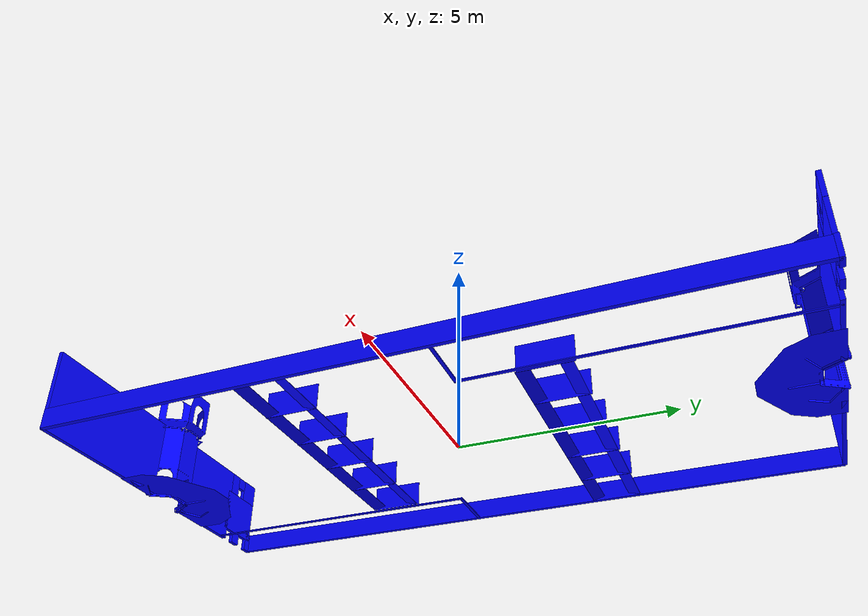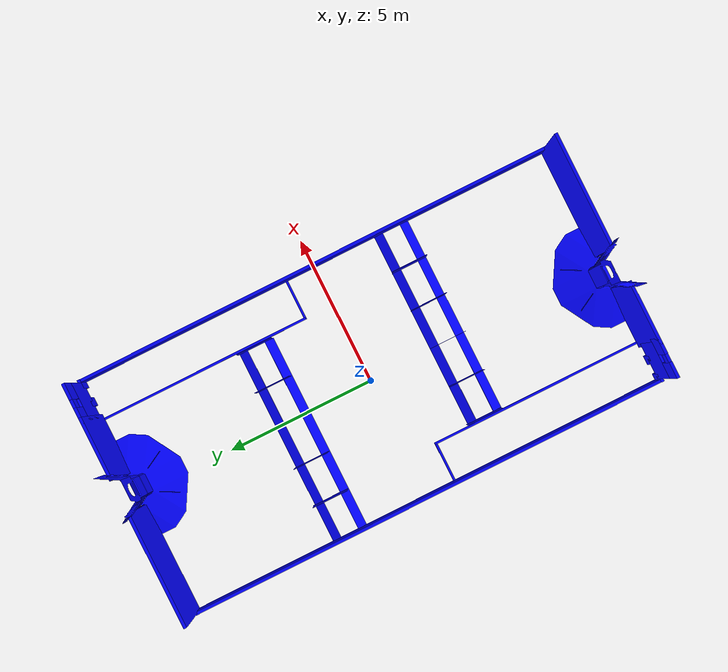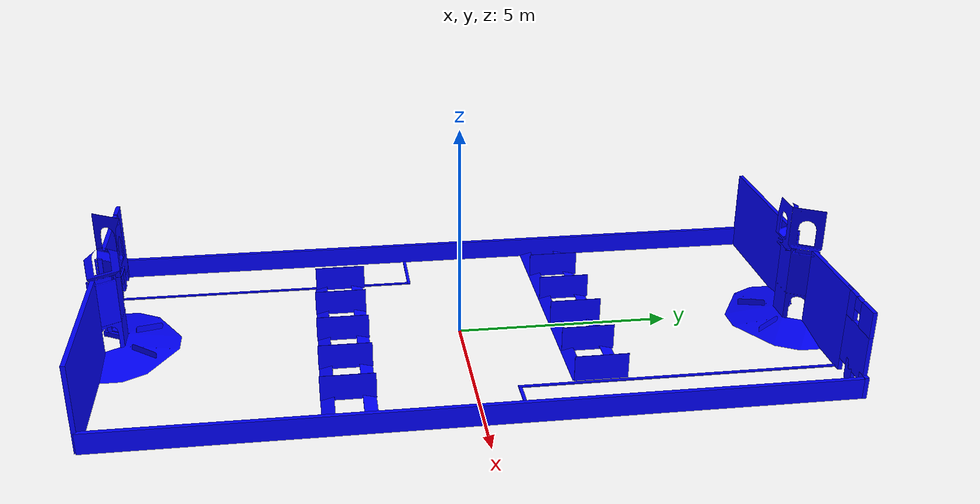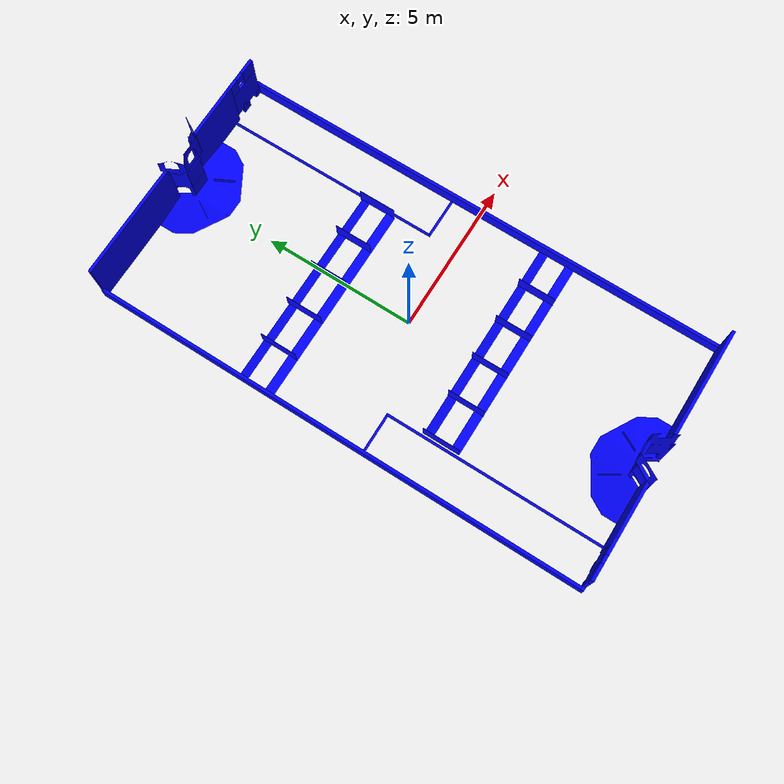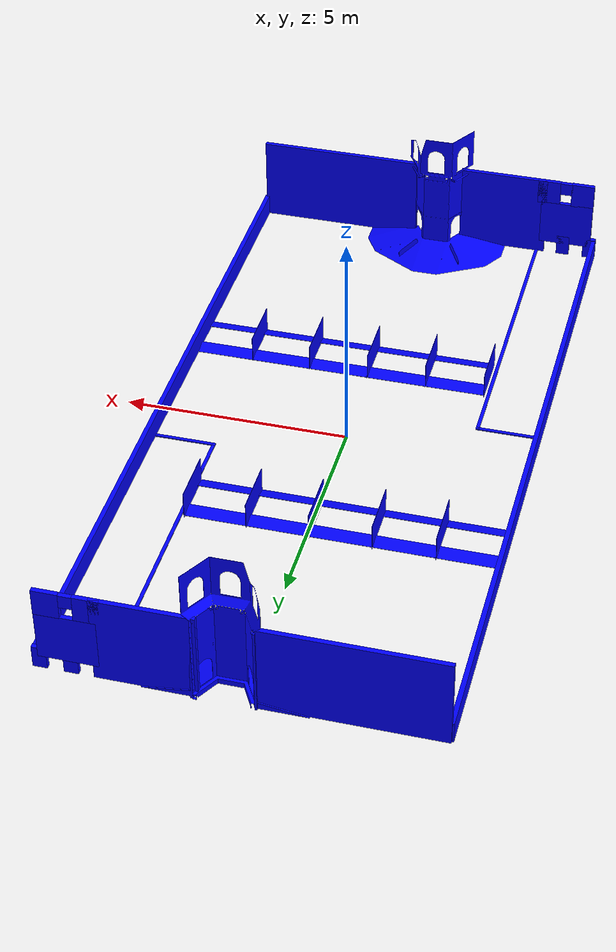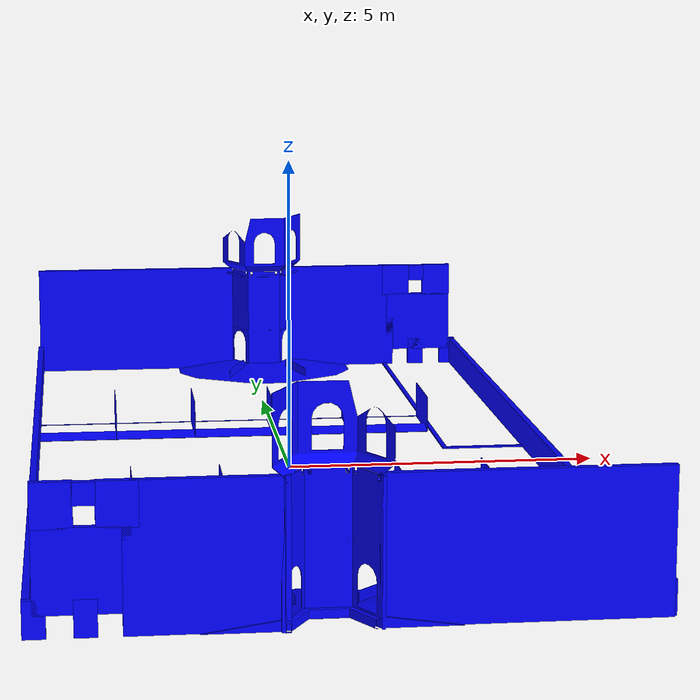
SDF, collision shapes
<?xml version="1.0" ?>
<sdf version="1.5">
  <model name="frc2016_field">
    <static>true</static>
    <link name="walls">

      <!-- Visual of the boundary walls -->
      <visual name="walls_visual">
        <geometry>
          <mesh>
            <uri>model://frc2016_field/meshes/walls.dae</uri>
          </mesh>
        </geometry>
      </visual>

      <collision name="front_turret">
        <geometry>
          <mesh>
            <uri>model://frc2016_field/meshes/turret_collide.dae</uri>
          </mesh>
        </geometry>
      </collision>

      <collision name="back_turret">
        <pose>0 0 0 0 0 3.1415</pose>
        <geometry>
          <mesh>
            <uri>model://frc2016_field/meshes/turret_collide.dae</uri>
          </mesh>
        </geometry>
      </collision>

      <collision name="left_wall">
        <pose>4.09997 0 0.2413 0 0 0</pose>
        <geometry>
          <box>
            <size>0.1 16.4592 0.4826</size>
          </box>
        </geometry>
      </collision>

      <collision name="right_wall">
        <pose>-4.09997 0 0.2413 0 0 0</pose>
        <geometry>
          <box>
            <size>0.1 16.4592 0.4826</size>
          </box>
        </geometry>
      </collision>

      <collision name="front_solid_wall">
        <pose>-2.2105 8.2196 1.0 0 0 0</pose>
        <geometry>
          <box>
            <size>3.8 0.1 2.0</size>
          </box>
        </geometry>
      </collision>

      <collision name="back_solid_wall">
        <pose>2.2105 -8.2196 1.0 0 0 0</pose>
        <geometry>
          <box>
            <size>3.8 0.1 2.0</size>
          </box>
        </geometry>
      </collision>

      <collision name="front_partial_wall">
        <pose>1.85 8.2196 1.0 0 0 0</pose>
        <geometry>
          <box>
            <size>2.1 0.1 2.0</size>
          </box>
        </geometry>
      </collision>

      <collision name="front_partial_wall_mid">
        <pose>3.4 8.2196 0.86 0 0 0</pose>
        <geometry>
          <box>
            <size>1.25 0.1 1.12</size>
          </box>
        </geometry>
      </collision>

      <collision name="front_partial_wall_lower_left">
        <pose>3.36 8.2196 0.25 0 0 0</pose>
        <geometry>
          <box>
            <size>.3 0.1 0.5</size>
          </box>
        </geometry>
      </collision>

      <collision name="front_partial_wall_lower_right">
        <pose>4.0 8.2196 0.25 0 0 0</pose>
        <geometry>
          <box>
            <size>.3 0.1 0.5</size>
          </box>
        </geometry>
      </collision>

      <collision name="front_partial_wall_upper_right">
        <pose>3.76 8.2196 1.7 0 0 0</pose>
        <geometry>
          <box>
            <size>.54 0.1 0.6</size>
          </box>
        </geometry>
      </collision>

      <collision name="front_partial_wall_upper_left">
        <pose>2.95 8.2196 1.7 0 0 0</pose>
        <geometry>
          <box>
            <size>.54 0.1 0.6</size>
          </box>
        </geometry>
      </collision>

      <collision name="front_partial_wall_upper_mid">
        <pose>3.36 8.2196 1.84 0 0 0</pose>
        <geometry>
          <box>
            <size>.3 0.1 0.3</size>
          </box>
        </geometry>
      </collision>

      <collision name="back_partial_wall">
        <pose>-1.85 -8.2196 1.0 0 0 0</pose>
        <geometry>
          <box>
            <size>2.1 0.1 2.0</size>
          </box>
        </geometry>
      </collision>

      <collision name="back_partial_wall_mid">
        <pose>-3.4 -8.2196 0.86 0 0 0</pose>
        <geometry>
          <box>
            <size>1.25 0.1 1.12</size>
          </box>
        </geometry>
      </collision>

      <collision name="back_partial_wall_lower_left">
        <pose>-3.36 -8.2196 0.25 0 0 0</pose>
        <geometry>
          <box>
            <size>.3 0.1 0.5</size>
          </box>
        </geometry>
      </collision>

      <collision name="back_partial_wall_lower_right">
        <pose>-4.0 -8.2196 0.25 0 0 0</pose>
        <geometry>
          <box>
            <size>.3 0.1 0.5</size>
          </box>
        </geometry>
      </collision>

      <collision name="back_partial_wall_upper_right">
        <pose>-3.76 -8.2196 1.7 0 0 0</pose>
        <geometry>
          <box>
            <size>.54 0.1 0.6</size>
          </box>
        </geometry>
      </collision>

      <collision name="back_partial_wall_upper_left">
        <pose>-2.95 -8.2196 1.7 0 0 0</pose>
        <geometry>
          <box>
            <size>.54 0.1 0.6</size>
          </box>
        </geometry>
      </collision>

      <collision name="back_partial_wall_upper_mid">
        <pose>-3.36 -8.2196 1.84 0 0 0</pose>
        <geometry>
          <box>
            <size>.3 0.1 0.3</size>
          </box>
        </geometry>
      </collision>

      <visual name="blue_passage_border_long">
        <pose>2.72665 4.5882 0.0127 0 0 0</pose>
        <geometry>
          <box>
            <size>.0762 7.3025 0.0254</size>
          </box>
        </geometry>
        <material>
          <ambient>0 0 1 1</ambient>
          <diffuse>0 0 1 1</diffuse>
        </material>
      </visual>
      <collision name="blue_passage_border_long">
        <pose>2.72665 4.5882 0.0127 0 0 0</pose>
        <geometry>
          <box>
            <size>.0762 7.3025 0.0254</size>
          </box>
        </geometry>
      </collision>
      <visual name="blue_passage_border_short">
        <pose>3.37435 0.97352 0.0127 0 0 0</pose>
        <geometry>
          <box>
            <size>1.37165 .0762 0.0254</size>
          </box>
        </geometry>
        <material>
          <ambient>0 0 1 1</ambient>
          <diffuse>0 0 1 1</diffuse>
        </material>
      </visual>
      <collision name="blue_passage_border_short">
        <pose>3.37435 0.97352 0.0127 0 0 0</pose>
        <geometry>
          <box>
            <size>1.37165 .0762 0.0254</size>
          </box>
        </geometry>
      </collision>

      <visual name="blue_divider_1">
        <pose>2.63052 2.80648 0.31114 0 0 0</pose>
        <geometry>
          <box>
            <size>0.009525 1.2192 0.6096</size>
          </box>
        </geometry>
      </visual>
      <collision name="blue_divider_1">
        <pose>2.63052 2.80648 0.31114 0 0 0</pose>
        <geometry>
          <box>
            <size>0.009525 1.2192 0.6096</size>
          </box>
        </geometry>
      </collision>

      <visual name="blue_divider_2">
        <pose>1.28432 2.80648 0.31114 0 0 0</pose>
        <geometry>
          <box>
            <size>0.009525 1.2192 0.6096</size>
          </box>
        </geometry>
      </visual>
      <collision name="blue_divider_2">
        <pose>1.28432 2.80648 0.31114 0 0 0</pose>
        <geometry>
          <box>
            <size>0.009525 1.2192 0.6096</size>
          </box>
        </geometry>
      </collision>

      <visual name="blue_divider_3">
        <pose>-0.06189 2.80648 0.31114 0 0 0</pose>
        <geometry>
          <box>
            <size>0.009525 1.2192 0.6096</size>
          </box>
        </geometry>
      </visual>
      <collision name="blue_divider_3">
        <pose>-0.06189 2.80648 0.31114 0 0 0</pose>
        <geometry>
          <box>
            <size>0.009525 1.2192 0.6096</size>
          </box>
        </geometry>
      </collision>

      <visual name="blue_divider_4">
        <pose>-1.40809 2.80648 0.31114 0 0 0</pose>
        <geometry>
          <box>
            <size>0.009525 1.2192 0.6096</size>
          </box>
        </geometry>
      </visual>
      <collision name="blue_divider_4">
        <pose>-1.40809 2.80648 0.31114 0 0 0</pose>
        <geometry>
          <box>
            <size>0.009525 1.2192 0.6096</size>
          </box>
        </geometry>
      </collision>

      <visual name="blue_divider_5">
        <pose>-2.75428 2.80648 0.31114 0 0 0</pose>
        <geometry>
          <box>
            <size>0.009525 1.2192 0.6096</size>
          </box>
        </geometry>
      </visual>
      <collision name="blue_divider_5">
        <pose>-2.75428 2.80648 0.31114 0 0 0</pose>
        <geometry>
          <box>
            <size>0.009525 1.2192 0.6096</size>
          </box>
        </geometry>
      </collision>

      <visual name="blue_barrier_ramp_up">
        <pose>-0.73340 3.22301 0.05063 -0.248865603 0 0</pose>
        <geometry>
          <box>
            <size>6.71817 0.3048 0.00635</size>
          </box>
        </geometry>
      </visual>
      <collision name="blue_barrier_ramp_up">
        <pose>-0.73340 3.22301 0.05063 -0.248865603 0 0</pose>
        <geometry>
          <box>
            <size>6.71817 0.3048 0.00635</size>
          </box>
        </geometry>
      </collision>

      <visual name="blue_barrier_ramp_down">
        <pose>-0.73340 2.31802 0.05063 0.248865603 0 0</pose>
        <geometry>
          <box>
            <size>6.71817 0.3048 0.00635</size>
          </box>
        </geometry>
      </visual>
      <collision name="blue_barrier_ramp_down">
        <pose>-0.73340 2.31802 0.05063 0.248865603 0 0</pose>
        <geometry>
          <box>
            <size>6.71817 0.3048 0.00635</size>
          </box>
        </geometry>
      </collision>

      <visual name="red_passage_border_long">
        <pose>-2.72730 -4.58839 0.0127 0 0 0</pose>
        <geometry>
          <box>
            <size>.0762 7.3025 0.0254</size>
          </box>
        </geometry>
        <material>
          <ambient>1 0 0 1</ambient>
          <diffuse>1 0 0 1</diffuse>
        </material>
      </visual>
      <collision name="red_passage_border_long">
        <pose>-2.72730 -4.58839 0.0127 0 0 0</pose>
        <geometry>
          <box>
            <size>.0762 7.3025 0.0254</size>
          </box>
        </geometry>
      </collision>
      <visual name="red_passage_border_short">
        <pose>-3.375 -0.97372 0.0127 0 0 0</pose>
        <geometry>
          <box>
            <size>1.37165 .0762 0.0254</size>
          </box>
        </geometry>
        <material>
          <ambient>1 0 0 1</ambient>
          <diffuse>1 0 0 1</diffuse>
        </material>
      </visual>
      <collision name="red_passage_border_short">
        <pose>-3.375 -0.97372 0.0127 0 0 0</pose>
        <geometry>
          <box>
            <size>1.37165 .0762 0.0254</size>
          </box>
        </geometry>
      </collision>

      <visual name="red_divider_1">
        <pose>-2.63117 -2.76442 0.31114 0 0 0</pose>
        <geometry>
          <box>
            <size>0.009525 1.2192 0.6096</size>
          </box>
        </geometry>
      </visual>
      <collision name="red_divider_1">
        <pose>-2.63117 -2.72845 0.31114 0 0 0</pose>
        <geometry>
          <box>
            <size>0.009525 1.2192 0.6096</size>
          </box>
        </geometry>
      </collision>

      <visual name="red_divider_2">
        <pose>-1.28496 -2.76442 0.31114 0 0 0</pose>
        <geometry>
          <box>
            <size>0.009525 1.2192 0.6096</size>
          </box>
        </geometry>
      </visual>
      <collision name="red_divider_2">
        <pose>-1.28496 -2.76442 0.31114 0 0 0</pose>
        <geometry>
          <box>
            <size>0.009525 1.2192 0.6096</size>
          </box>
        </geometry>
      </collision>

      <visual name="red_divider_3">
        <pose>0.06124 -2.76442 0.31114 0 0 0</pose>
        <geometry>
          <box>
            <size>0.009525 1.2192 0.6096</size>
          </box>
        </geometry>
      </visual>
      <collision name="red_divider_3">
        <pose>0.06124 -2.76442 0.31114 0 0 0</pose>
        <geometry>
          <box>
            <size>0.009525 1.2192 0.6096</size>
          </box>
        </geometry>
      </collision>

      <visual name="red_divider_4">
        <pose>1.40744 -2.76442 0.31114 0 0 0</pose>
        <geometry>
          <box>
            <size>0.009525 1.2192 0.6096</size>
          </box>
        </geometry>
      </visual>
      <collision name="red_divider_4">
        <pose>1.40744 -2.76442 0.31114 0 0 0</pose>
        <geometry>
          <box>
            <size>0.009525 1.2192 0.6096</size>
          </box>
        </geometry>
      </collision>

      <visual name="red_divider_5">
        <pose>2.75363 -2.76442 0.31114 0 0 0</pose>
        <geometry>
          <box>
            <size>0.009525 1.2192 0.6096</size>
          </box>
        </geometry>
      </visual>
      <collision name="red_divider_5">
        <pose>2.75363 -2.76442 0.31114 0 0 0</pose>
        <geometry>
          <box>
            <size>0.009525 1.2192 0.6096</size>
          </box>
        </geometry>
      </collision>

      <visual name="red_barrier_ramp_down">
        <pose>0.73275 -2.31261 0.05063 -0.248865603 0 0</pose>
        <geometry>
          <box>
            <size>6.71817 0.3048 0.00635</size>
          </box>
        </geometry>
      </visual>
      <collision name="red_barrier_ramp_down">
        <pose>0.73275 -2.31261 0.05063 -0.248865603 0 0</pose>
        <geometry>
          <box>
            <size>6.71817 0.3048 0.00635</size>
          </box>
        </geometry>
      </collision>

      <visual name="red_barrier_ramp_up">
        <pose>0.73275 -3.21691 0.05063 0.248865603 0 0</pose>
        <geometry>
          <box>
            <size>6.71817 0.3048 0.00635</size>
          </box>
        </geometry>
      </visual>
      <collision name="red_barrier_ramp_up">
        <pose>0.73275 -3.21691 0.05063 0.248865603 0 0</pose>
        <geometry>
          <box>
            <size>6.71817 0.3048 0.00635</size>
          </box>
        </geometry>
      </collision>

    </link>
  </model>
</sdf>
